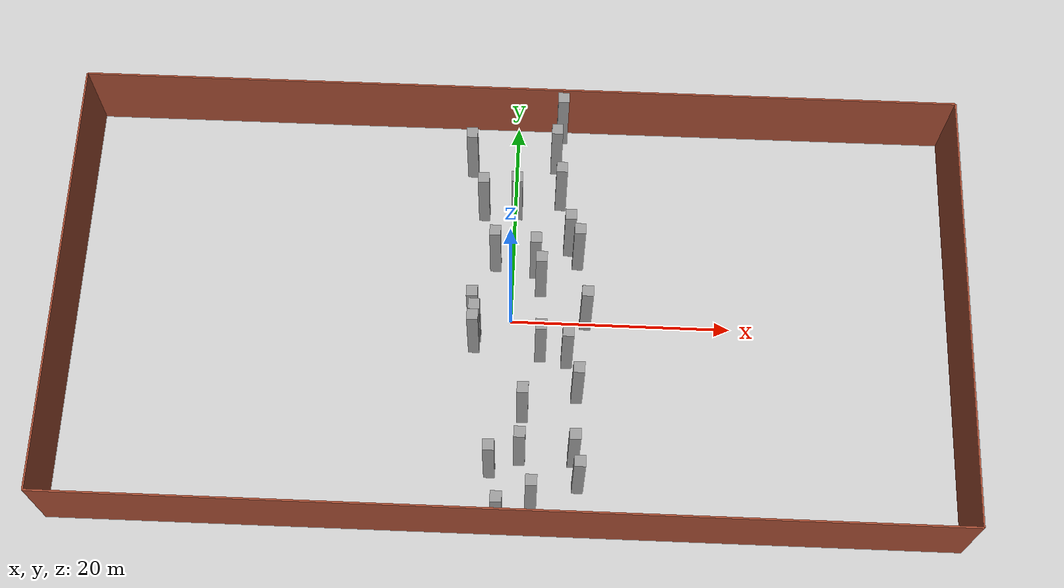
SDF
<sdf version="1.7">
 <world name="default">
  <model name="ground_plane">
   <static>1</static>
   <link name="link">
    <collision name="collision">
     <geometry><plane><normal>0 0 1</normal><size>100 100</size></plane></geometry>
     <surface>
      <contact><collide_bitmask>65535</collide_bitmask></contact>
      <friction><ode><mu>100</mu><mu2>50</mu2></ode></friction>
     </surface>
    </collision>
    <visual name="visual">
     <cast_shadows>0</cast_shadows>
     <geometry><plane><normal>0 0 1</normal><size>100 100</size></plane></geometry>
     <material>
      <script><uri>file://media/materials/scripts/gazebo.material</uri><name>Gazebo/Grey</name></script>
     </material>
    </visual>
   </link>
  </model>
  <model name="sim_room_rect">
   <link name="Wall_14">
    <collision name="Wall_14_Collision">
     <geometry><box><size>40 0.15 8</size></box></geometry>
     <pose>0 0 4 0 -0 0</pose>
    </collision>
    <visual name="Wall_14_Visual">
     <pose>0 0 4 0 -0 0</pose>
     <geometry><box><size>40 0.15 8</size></box></geometry>
     <material>
      <script><uri>file://media/materials/scripts/gazebo.material</uri><name>Gazebo/Bricks</name></script>
      <ambient>1 1 1 1</ambient>
     </material>
     <meta><layer>0</layer></meta>
    </visual>
    <pose>40 -0 0 0 -0 -1.5708</pose>
   </link>
   <link name="Wall_15">
    <collision name="Wall_15_Collision">
     <geometry><box><size>80 0.15 8</size></box></geometry>
     <pose>0 0 4 0 -0 0</pose>
    </collision>
    <visual name="Wall_15_Visual">
     <pose>0 0 4 0 -0 0</pose>
     <geometry><box><size>80 0.15 8</size></box></geometry>
     <material>
      <script><uri>file://media/materials/scripts/gazebo.material</uri><name>Gazebo/Bricks</name></script>
      <ambient>1 1 1 1</ambient>
     </material>
     <meta><layer>0</layer></meta>
    </visual>
    <pose>0 -20 0 0 -0 3.14159</pose>
   </link>
   <link name="Wall_16">
    <collision name="Wall_16_Collision">
     <geometry><box><size>40 0.15 8</size></box></geometry>
     <pose>0 0 4 0 -0 0</pose>
    </collision>
    <visual name="Wall_16_Visual">
     <pose>0 0 4 0 -0 0</pose>
     <geometry><box><size>40 0.15 8</size></box></geometry>
     <material>
      <script><uri>file://media/materials/scripts/gazebo.material</uri><name>Gazebo/Bricks</name></script>
      <ambient>1 1 1 1</ambient>
     </material>
     <meta><layer>0</layer></meta>
    </visual>
    <pose>-40 -0 0 0 -0 1.5708</pose>
   </link>
   <link name="Wall_19">
    <collision name="Wall_19_Collision">
     <geometry><box><size>80 0.15 8</size></box></geometry>
     <pose>0 0 4 0 -0 0</pose>
    </collision>
    <visual name="Wall_19_Visual">
     <pose>0 0 4 0 -0 0</pose>
     <geometry><box><size>80 0.15 8</size></box></geometry>
     <material>
      <script><uri>file://media/materials/scripts/gazebo.material</uri><name>Gazebo/Bricks</name></script>
      <ambient>1 1 1 1</ambient>
     </material>
     <meta><layer>0</layer></meta>
    </visual>
    <pose>0 20 0 0 -0 0</pose>
   </link>
   <static>1</static>
  </model>
  <model name="unit_box_static53">
   <link name="link">
    <inertial>
     <mass>1</mass>
     <inertia>
      <ixx>0.166667</ixx>
      <ixy>0</ixy>
      <ixz>0</ixz>
      <iyy>0.166667</iyy>
      <iyz>0</iyz>
      <izz>0.166667</izz>
     </inertia>
    </inertial>
    <visual name="visual">
     <geometry><box><size>1 1 8</size></box></geometry>
     <material>
      <script><name>Gazebo/Grey</name><uri>file://media/materials/scripts/gazebo.material</uri></script>
      <shader type="pixel"/>
     </material>
    </visual>
    <collision name="collision">
     <geometry><box><size>1 1 8</size></box></geometry>
     <surface>
      <friction>
       <ode><mu>1</mu><mu2>1</mu2><fdir1>0 0 0</fdir1><slip1>0</slip1><slip2>0</slip2></ode>
       <torsional>
        <coefficient>1</coefficient>
        <patch_radius>0</patch_radius>
        <surface_radius>0</surface_radius>
        <use_patch_radius>1</use_patch_radius>
        <ode><slip>0</slip></ode>
       </torsional>
      </friction>
      <bounce><restitution_coefficient>0</restitution_coefficient><threshold>1e+06</threshold></bounce>
      <contact>
       <collide_without_contact>0</collide_without_contact>
       <collide_without_contact_bitmask>1</collide_without_contact_bitmask>
       <collide_bitmask>1</collide_bitmask>
       <ode>
        <soft_cfm>0</soft_cfm>
        <soft_erp>0.2</soft_erp>
        <kp>1e+13</kp>
        <kd>1</kd>
        <max_vel>0.01</max_vel>
        <min_depth>0</min_depth>
       </ode>
       <bullet>
        <split_impulse>1</split_impulse>
        <split_impulse_penetration_threshold>-0.01</split_impulse_penetration_threshold>
        <soft_cfm>0</soft_cfm>
        <soft_erp>0.2</soft_erp>
        <kp>1e+13</kp>
        <kd>1</kd>
       </bullet>
      </contact>
     </surface>
    </collision>
   </link>
   <static>1</static>
   <pose>5.94114 5.9923 4 0 -0 0</pose>
  </model>
  <model name="unit_box_static78">
   <link name="link">
    <inertial>
     <mass>1</mass>
     <inertia>
      <ixx>0.166667</ixx>
      <ixy>0</ixy>
      <ixz>0</ixz>
      <iyy>0.166667</iyy>
      <iyz>0</iyz>
      <izz>0.166667</izz>
     </inertia>
    </inertial>
    <visual name="visual">
     <geometry><box><size>1 1 8</size></box></geometry>
     <material>
      <script><name>Gazebo/Grey</name><uri>file://media/materials/scripts/gazebo.material</uri></script>
      <shader type="pixel"/>
     </material>
    </visual>
    <collision name="collision">
     <geometry><box><size>1 1 8</size></box></geometry>
     <surface>
      <friction>
       <ode><mu>1</mu><mu2>1</mu2><fdir1>0 0 0</fdir1><slip1>0</slip1><slip2>0</slip2></ode>
       <torsional>
        <coefficient>1</coefficient>
        <patch_radius>0</patch_radius>
        <surface_radius>0</surface_radius>
        <use_patch_radius>1</use_patch_radius>
        <ode><slip>0</slip></ode>
       </torsional>
      </friction>
      <bounce><restitution_coefficient>0</restitution_coefficient><threshold>1e+06</threshold></bounce>
      <contact>
       <collide_without_contact>0</collide_without_contact>
       <collide_without_contact_bitmask>1</collide_without_contact_bitmask>
       <collide_bitmask>1</collide_bitmask>
       <ode>
        <soft_cfm>0</soft_cfm>
        <soft_erp>0.2</soft_erp>
        <kp>1e+13</kp>
        <kd>1</kd>
        <max_vel>0.01</max_vel>
        <min_depth>0</min_depth>
       </ode>
       <bullet>
        <split_impulse>1</split_impulse>
        <split_impulse_penetration_threshold>-0.01</split_impulse_penetration_threshold>
        <soft_cfm>0</soft_cfm>
        <soft_erp>0.2</soft_erp>
        <kp>1e+13</kp>
        <kd>1</kd>
       </bullet>
      </contact>
     </surface>
    </collision>
   </link>
   <static>1</static>
   <pose>4.15709 12.0635 4 0 -0 0</pose>
  </model>
  <model name="unit_box_static81">
   <link name="link">
    <inertial>
     <mass>1</mass>
     <inertia>
      <ixx>0.166667</ixx>
      <ixy>0</ixy>
      <ixz>0</ixz>
      <iyy>0.166667</iyy>
      <iyz>0</iyz>
      <izz>0.166667</izz>
     </inertia>
    </inertial>
    <visual name="visual">
     <geometry><box><size>1 1 8</size></box></geometry>
     <material>
      <script><name>Gazebo/Grey</name><uri>file://media/materials/scripts/gazebo.material</uri></script>
      <shader type="pixel"/>
     </material>
    </visual>
    <collision name="collision">
     <geometry><box><size>1 1 8</size></box></geometry>
     <surface>
      <friction>
       <ode><mu>1</mu><mu2>1</mu2><fdir1>0 0 0</fdir1><slip1>0</slip1><slip2>0</slip2></ode>
       <torsional>
        <coefficient>1</coefficient>
        <patch_radius>0</patch_radius>
        <surface_radius>0</surface_radius>
        <use_patch_radius>1</use_patch_radius>
        <ode><slip>0</slip></ode>
       </torsional>
      </friction>
      <bounce><restitution_coefficient>0</restitution_coefficient><threshold>1e+06</threshold></bounce>
      <contact>
       <collide_without_contact>0</collide_without_contact>
       <collide_without_contact_bitmask>1</collide_without_contact_bitmask>
       <collide_bitmask>1</collide_bitmask>
       <ode>
        <soft_cfm>0</soft_cfm>
        <soft_erp>0.2</soft_erp>
        <kp>1e+13</kp>
        <kd>1</kd>
        <max_vel>0.01</max_vel>
        <min_depth>0</min_depth>
       </ode>
       <bullet>
        <split_impulse>1</split_impulse>
        <split_impulse_penetration_threshold>-0.01</split_impulse_penetration_threshold>
        <soft_cfm>0</soft_cfm>
        <soft_erp>0.2</soft_erp>
        <kp>1e+13</kp>
        <kd>1</kd>
       </bullet>
      </contact>
     </surface>
    </collision>
   </link>
   <static>1</static>
   <pose>6.76678 -0.001473 4 0 -0 0</pose>
  </model>
  <model name="unit_box_static97">
   <link name="link">
    <inertial>
     <mass>1</mass>
     <inertia>
      <ixx>0.166667</ixx>
      <ixy>0</ixy>
      <ixz>0</ixz>
      <iyy>0.166667</iyy>
      <iyz>0</iyz>
      <izz>0.166667</izz>
     </inertia>
    </inertial>
    <visual name="visual">
     <geometry><box><size>1 1 8</size></box></geometry>
     <material>
      <script><name>Gazebo/Grey</name><uri>file://media/materials/scripts/gazebo.material</uri></script>
      <shader type="pixel"/>
     </material>
    </visual>
    <collision name="collision">
     <geometry><box><size>1 1 8</size></box></geometry>
     <surface>
      <friction>
       <ode><mu>1</mu><mu2>1</mu2><fdir1>0 0 0</fdir1><slip1>0</slip1><slip2>0</slip2></ode>
       <torsional>
        <coefficient>1</coefficient>
        <patch_radius>0</patch_radius>
        <surface_radius>0</surface_radius>
        <use_patch_radius>1</use_patch_radius>
        <ode><slip>0</slip></ode>
       </torsional>
      </friction>
      <bounce><restitution_coefficient>0</restitution_coefficient><threshold>1e+06</threshold></bounce>
      <contact>
       <collide_without_contact>0</collide_without_contact>
       <collide_without_contact_bitmask>1</collide_without_contact_bitmask>
       <collide_bitmask>1</collide_bitmask>
       <ode>
        <soft_cfm>0</soft_cfm>
        <soft_erp>0.2</soft_erp>
        <kp>1e+13</kp>
        <kd>1</kd>
        <max_vel>0.01</max_vel>
        <min_depth>0</min_depth>
       </ode>
       <bullet>
        <split_impulse>1</split_impulse>
        <split_impulse_penetration_threshold>-0.01</split_impulse_penetration_threshold>
        <soft_cfm>0</soft_cfm>
        <soft_erp>0.2</soft_erp>
        <kp>1e+13</kp>
        <kd>1</kd>
       </bullet>
      </contact>
     </surface>
    </collision>
   </link>
   <static>1</static>
   <pose>5.08949 7.37291 4 0 -0 0</pose>
  </model>
  <model name="unit_box_static99">
   <link name="link">
    <inertial>
     <mass>1</mass>
     <inertia>
      <ixx>0.166667</ixx>
      <ixy>0</ixy>
      <ixz>0</ixz>
      <iyy>0.166667</iyy>
      <iyz>0</iyz>
      <izz>0.166667</izz>
     </inertia>
    </inertial>
    <visual name="visual">
     <geometry><box><size>1 1 8</size></box></geometry>
     <material>
      <script><name>Gazebo/Grey</name><uri>file://media/materials/scripts/gazebo.material</uri></script>
      <shader type="pixel"/>
     </material>
    </visual>
    <collision name="collision">
     <geometry><box><size>1 1 8</size></box></geometry>
     <surface>
      <friction>
       <ode><mu>1</mu><mu2>1</mu2><fdir1>0 0 0</fdir1><slip1>0</slip1><slip2>0</slip2></ode>
       <torsional>
        <coefficient>1</coefficient>
        <patch_radius>0</patch_radius>
        <surface_radius>0</surface_radius>
        <use_patch_radius>1</use_patch_radius>
        <ode><slip>0</slip></ode>
       </torsional>
      </friction>
      <bounce><restitution_coefficient>0</restitution_coefficient><threshold>1e+06</threshold></bounce>
      <contact>
       <collide_without_contact>0</collide_without_contact>
       <collide_without_contact_bitmask>1</collide_without_contact_bitmask>
       <collide_bitmask>1</collide_bitmask>
       <ode>
        <soft_cfm>0</soft_cfm>
        <soft_erp>0.2</soft_erp>
        <kp>1e+13</kp>
        <kd>1</kd>
        <max_vel>0.01</max_vel>
        <min_depth>0</min_depth>
       </ode>
       <bullet>
        <split_impulse>1</split_impulse>
        <split_impulse_penetration_threshold>-0.01</split_impulse_penetration_threshold>
        <soft_cfm>0</soft_cfm>
        <soft_erp>0.2</soft_erp>
        <kp>1e+13</kp>
        <kd>1</kd>
       </bullet>
      </contact>
     </surface>
    </collision>
   </link>
   <static>1</static>
   <pose>-0.508644 -18.9445 4 0 -0 0</pose>
  </model>
  <model name="unit_box_static101">
   <link name="link">
    <inertial>
     <mass>1</mass>
     <inertia>
      <ixx>0.166667</ixx>
      <ixy>0</ixy>
      <ixz>0</ixz>
      <iyy>0.166667</iyy>
      <iyz>0</iyz>
      <izz>0.166667</izz>
     </inertia>
    </inertial>
    <visual name="visual">
     <geometry><box><size>1 1 8</size></box></geometry>
     <material>
      <script><name>Gazebo/Grey</name><uri>file://media/materials/scripts/gazebo.material</uri></script>
      <shader type="pixel"/>
     </material>
    </visual>
    <collision name="collision">
     <geometry><box><size>1 1 8</size></box></geometry>
     <surface>
      <friction>
       <ode><mu>1</mu><mu2>1</mu2><fdir1>0 0 0</fdir1><slip1>0</slip1><slip2>0</slip2></ode>
       <torsional>
        <coefficient>1</coefficient>
        <patch_radius>0</patch_radius>
        <surface_radius>0</surface_radius>
        <use_patch_radius>1</use_patch_radius>
        <ode><slip>0</slip></ode>
       </torsional>
      </friction>
      <bounce><restitution_coefficient>0</restitution_coefficient><threshold>1e+06</threshold></bounce>
      <contact>
       <collide_without_contact>0</collide_without_contact>
       <collide_without_contact_bitmask>1</collide_without_contact_bitmask>
       <collide_bitmask>1</collide_bitmask>
       <ode>
        <soft_cfm>0</soft_cfm>
        <soft_erp>0.2</soft_erp>
        <kp>1e+13</kp>
        <kd>1</kd>
        <max_vel>0.01</max_vel>
        <min_depth>0</min_depth>
       </ode>
       <bullet>
        <split_impulse>1</split_impulse>
        <split_impulse_penetration_threshold>-0.01</split_impulse_penetration_threshold>
        <soft_cfm>0</soft_cfm>
        <soft_erp>0.2</soft_erp>
        <kp>1e+13</kp>
        <kd>1</kd>
       </bullet>
      </contact>
     </surface>
    </collision>
   </link>
   <static>1</static>
   <pose>2.60868 3.15029 4 0 -0 0</pose>
  </model>
  <model name="unit_box_static104">
   <link name="link">
    <inertial>
     <mass>1</mass>
     <inertia>
      <ixx>0.166667</ixx>
      <ixy>0</ixy>
      <ixz>0</ixz>
      <iyy>0.166667</iyy>
      <iyz>0</iyz>
      <izz>0.166667</izz>
     </inertia>
    </inertial>
    <visual name="visual">
     <geometry><box><size>1 1 8</size></box></geometry>
     <material>
      <script><name>Gazebo/Grey</name><uri>file://media/materials/scripts/gazebo.material</uri></script>
      <shader type="pixel"/>
     </material>
    </visual>
    <collision name="collision">
     <geometry><box><size>1 1 8</size></box></geometry>
     <surface>
      <friction>
       <ode><mu>1</mu><mu2>1</mu2><fdir1>0 0 0</fdir1><slip1>0</slip1><slip2>0</slip2></ode>
       <torsional>
        <coefficient>1</coefficient>
        <patch_radius>0</patch_radius>
        <surface_radius>0</surface_radius>
        <use_patch_radius>1</use_patch_radius>
        <ode><slip>0</slip></ode>
       </torsional>
      </friction>
      <bounce><restitution_coefficient>0</restitution_coefficient><threshold>1e+06</threshold></bounce>
      <contact>
       <collide_without_contact>0</collide_without_contact>
       <collide_without_contact_bitmask>1</collide_without_contact_bitmask>
       <collide_bitmask>1</collide_bitmask>
       <ode>
        <soft_cfm>0</soft_cfm>
        <soft_erp>0.2</soft_erp>
        <kp>1e+13</kp>
        <kd>1</kd>
        <max_vel>0.01</max_vel>
        <min_depth>0</min_depth>
       </ode>
       <bullet>
        <split_impulse>1</split_impulse>
        <split_impulse_penetration_threshold>-0.01</split_impulse_penetration_threshold>
        <soft_cfm>0</soft_cfm>
        <soft_erp>0.2</soft_erp>
        <kp>1e+13</kp>
        <kd>1</kd>
       </bullet>
      </contact>
     </surface>
    </collision>
   </link>
   <static>1</static>
   <pose>5.16515 -3.85592 4 0 -0 0</pose>
  </model>
  <model name="unit_box_static107">
   <link name="link">
    <inertial>
     <mass>1</mass>
     <inertia>
      <ixx>0.166667</ixx>
      <ixy>0</ixy>
      <ixz>0</ixz>
      <iyy>0.166667</iyy>
      <iyz>0</iyz>
      <izz>0.166667</izz>
     </inertia>
    </inertial>
    <visual name="visual">
     <geometry><box><size>1 1 8</size></box></geometry>
     <material>
      <script><name>Gazebo/Grey</name><uri>file://media/materials/scripts/gazebo.material</uri></script>
      <shader type="pixel"/>
     </material>
    </visual>
    <collision name="collision">
     <geometry><box><size>1 1 8</size></box></geometry>
     <surface>
      <friction>
       <ode><mu>1</mu><mu2>1</mu2><fdir1>0 0 0</fdir1><slip1>0</slip1><slip2>0</slip2></ode>
       <torsional>
        <coefficient>1</coefficient>
        <patch_radius>0</patch_radius>
        <surface_radius>0</surface_radius>
        <use_patch_radius>1</use_patch_radius>
        <ode><slip>0</slip></ode>
       </torsional>
      </friction>
      <bounce><restitution_coefficient>0</restitution_coefficient><threshold>1e+06</threshold></bounce>
      <contact>
       <collide_without_contact>0</collide_without_contact>
       <collide_without_contact_bitmask>1</collide_without_contact_bitmask>
       <collide_bitmask>1</collide_bitmask>
       <ode>
        <soft_cfm>0</soft_cfm>
        <soft_erp>0.2</soft_erp>
        <kp>1e+13</kp>
        <kd>1</kd>
        <max_vel>0.01</max_vel>
        <min_depth>0</min_depth>
       </ode>
       <bullet>
        <split_impulse>1</split_impulse>
        <split_impulse_penetration_threshold>-0.01</split_impulse_penetration_threshold>
        <soft_cfm>0</soft_cfm>
        <soft_erp>0.2</soft_erp>
        <kp>1e+13</kp>
        <kd>1</kd>
       </bullet>
      </contact>
     </surface>
    </collision>
   </link>
   <static>1</static>
   <pose>6.45567 -15.5784 4 0 -0 0</pose>
  </model>
  <model name="unit_box_static119">
   <link name="link">
    <inertial>
     <mass>1</mass>
     <inertia>
      <ixx>0.166667</ixx>
      <ixy>0</ixy>
      <ixz>0</ixz>
      <iyy>0.166667</iyy>
      <iyz>0</iyz>
      <izz>0.166667</izz>
     </inertia>
    </inertial>
    <visual name="visual">
     <geometry><box><size>1 1 8</size></box></geometry>
     <material>
      <script><name>Gazebo/Grey</name><uri>file://media/materials/scripts/gazebo.material</uri></script>
      <shader type="pixel"/>
     </material>
    </visual>
    <collision name="collision">
     <geometry><box><size>1 1 8</size></box></geometry>
     <surface>
      <friction>
       <ode><mu>1</mu><mu2>1</mu2><fdir1>0 0 0</fdir1><slip1>0</slip1><slip2>0</slip2></ode>
       <torsional>
        <coefficient>1</coefficient>
        <patch_radius>0</patch_radius>
        <surface_radius>0</surface_radius>
        <use_patch_radius>1</use_patch_radius>
        <ode><slip>0</slip></ode>
       </torsional>
      </friction>
      <bounce><restitution_coefficient>0</restitution_coefficient><threshold>1e+06</threshold></bounce>
      <contact>
       <collide_without_contact>0</collide_without_contact>
       <collide_without_contact_bitmask>1</collide_without_contact_bitmask>
       <collide_bitmask>1</collide_bitmask>
       <ode>
        <soft_cfm>0</soft_cfm>
        <soft_erp>0.2</soft_erp>
        <kp>1e+13</kp>
        <kd>1</kd>
        <max_vel>0.01</max_vel>
        <min_depth>0</min_depth>
       </ode>
       <bullet>
        <split_impulse>1</split_impulse>
        <split_impulse_penetration_threshold>-0.01</split_impulse_penetration_threshold>
        <soft_cfm>0</soft_cfm>
        <soft_erp>0.2</soft_erp>
        <kp>1e+13</kp>
        <kd>1</kd>
       </bullet>
      </contact>
     </surface>
    </collision>
   </link>
   <static>1</static>
   <pose>-4.14021 15.2702 4 0 -0 0</pose>
  </model>
  <model name="unit_box_static124">
   <link name="link">
    <inertial>
     <mass>1</mass>
     <inertia>
      <ixx>0.166667</ixx>
      <ixy>0</ixy>
      <ixz>0</ixz>
      <iyy>0.166667</iyy>
      <iyz>0</iyz>
      <izz>0.166667</izz>
     </inertia>
    </inertial>
    <visual name="visual">
     <geometry><box><size>1 1 8</size></box></geometry>
     <material>
      <script><name>Gazebo/Grey</name><uri>file://media/materials/scripts/gazebo.material</uri></script>
      <shader type="pixel"/>
     </material>
    </visual>
    <collision name="collision">
     <geometry><box><size>1 1 8</size></box></geometry>
     <surface>
      <friction>
       <ode><mu>1</mu><mu2>1</mu2><fdir1>0 0 0</fdir1><slip1>0</slip1><slip2>0</slip2></ode>
       <torsional>
        <coefficient>1</coefficient>
        <patch_radius>0</patch_radius>
        <surface_radius>0</surface_radius>
        <use_patch_radius>1</use_patch_radius>
        <ode><slip>0</slip></ode>
       </torsional>
      </friction>
      <bounce><restitution_coefficient>0</restitution_coefficient><threshold>1e+06</threshold></bounce>
      <contact>
       <collide_without_contact>0</collide_without_contact>
       <collide_without_contact_bitmask>1</collide_without_contact_bitmask>
       <collide_bitmask>1</collide_bitmask>
       <ode>
        <soft_cfm>0</soft_cfm>
        <soft_erp>0.2</soft_erp>
        <kp>1e+13</kp>
        <kd>1</kd>
        <max_vel>0.01</max_vel>
        <min_depth>0</min_depth>
       </ode>
       <bullet>
        <split_impulse>1</split_impulse>
        <split_impulse_penetration_threshold>-0.01</split_impulse_penetration_threshold>
        <soft_cfm>0</soft_cfm>
        <soft_erp>0.2</soft_erp>
        <kp>1e+13</kp>
        <kd>1</kd>
       </bullet>
      </contact>
     </surface>
    </collision>
   </link>
   <static>1</static>
   <pose>-3.26794 -2.61889 4 0 -0 0</pose>
  </model>
  <model name="unit_box_static129">
   <link name="link">
    <inertial>
     <mass>1</mass>
     <inertia>
      <ixx>0.166667</ixx>
      <ixy>0</ixy>
      <ixz>0</ixz>
      <iyy>0.166667</iyy>
      <iyz>0</iyz>
      <izz>0.166667</izz>
     </inertia>
    </inertial>
    <visual name="visual">
     <geometry><box><size>1 1 8</size></box></geometry>
     <material>
      <script><name>Gazebo/Grey</name><uri>file://media/materials/scripts/gazebo.material</uri></script>
      <shader type="pixel"/>
     </material>
    </visual>
    <collision name="collision">
     <geometry><box><size>1 1 8</size></box></geometry>
     <surface>
      <friction>
       <ode><mu>1</mu><mu2>1</mu2><fdir1>0 0 0</fdir1><slip1>0</slip1><slip2>0</slip2></ode>
       <torsional>
        <coefficient>1</coefficient>
        <patch_radius>0</patch_radius>
        <surface_radius>0</surface_radius>
        <use_patch_radius>1</use_patch_radius>
        <ode><slip>0</slip></ode>
       </torsional>
      </friction>
      <bounce><restitution_coefficient>0</restitution_coefficient><threshold>1e+06</threshold></bounce>
      <contact>
       <collide_without_contact>0</collide_without_contact>
       <collide_without_contact_bitmask>1</collide_without_contact_bitmask>
       <collide_bitmask>1</collide_bitmask>
       <ode>
        <soft_cfm>0</soft_cfm>
        <soft_erp>0.2</soft_erp>
        <kp>1e+13</kp>
        <kd>1</kd>
        <max_vel>0.01</max_vel>
        <min_depth>0</min_depth>
       </ode>
       <bullet>
        <split_impulse>1</split_impulse>
        <split_impulse_penetration_threshold>-0.01</split_impulse_penetration_threshold>
        <soft_cfm>0</soft_cfm>
        <soft_erp>0.2</soft_erp>
        <kp>1e+13</kp>
        <kd>1</kd>
       </bullet>
      </contact>
     </surface>
    </collision>
   </link>
   <static>1</static>
   <pose>3.62313 15.9289 4 0 -0 0</pose>
  </model>
  <model name="unit_box_static133">
   <link name="link">
    <inertial>
     <mass>1</mass>
     <inertia>
      <ixx>0.166667</ixx>
      <ixy>0</ixy>
      <ixz>0</ixz>
      <iyy>0.166667</iyy>
      <iyz>0</iyz>
      <izz>0.166667</izz>
     </inertia>
    </inertial>
    <visual name="visual">
     <geometry><box><size>1 1 8</size></box></geometry>
     <material>
      <script><name>Gazebo/Grey</name><uri>file://media/materials/scripts/gazebo.material</uri></script>
      <shader type="pixel"/>
     </material>
    </visual>
    <collision name="collision">
     <geometry><box><size>1 1 8</size></box></geometry>
     <surface>
      <friction>
       <ode><mu>1</mu><mu2>1</mu2><fdir1>0 0 0</fdir1><slip1>0</slip1><slip2>0</slip2></ode>
       <torsional>
        <coefficient>1</coefficient>
        <patch_radius>0</patch_radius>
        <surface_radius>0</surface_radius>
        <use_patch_radius>1</use_patch_radius>
        <ode><slip>0</slip></ode>
       </torsional>
      </friction>
      <bounce><restitution_coefficient>0</restitution_coefficient><threshold>1e+06</threshold></bounce>
      <contact>
       <collide_without_contact>0</collide_without_contact>
       <collide_without_contact_bitmask>1</collide_without_contact_bitmask>
       <collide_bitmask>1</collide_bitmask>
       <ode>
        <soft_cfm>0</soft_cfm>
        <soft_erp>0.2</soft_erp>
        <kp>1e+13</kp>
        <kd>1</kd>
        <max_vel>0.01</max_vel>
        <min_depth>0</min_depth>
       </ode>
       <bullet>
        <split_impulse>1</split_impulse>
        <split_impulse_penetration_threshold>-0.01</split_impulse_penetration_threshold>
        <soft_cfm>0</soft_cfm>
        <soft_erp>0.2</soft_erp>
        <kp>1e+13</kp>
        <kd>1</kd>
       </bullet>
      </contact>
     </surface>
    </collision>
   </link>
   <static>1</static>
   <pose>1.25902 -13.1947 4 0 -0 0</pose>
  </model>
  <model name="unit_box_static135">
   <link name="link">
    <inertial>
     <mass>1</mass>
     <inertia>
      <ixx>0.166667</ixx>
      <ixy>0</ixy>
      <ixz>0</ixz>
      <iyy>0.166667</iyy>
      <iyz>0</iyz>
      <izz>0.166667</izz>
     </inertia>
    </inertial>
    <visual name="visual">
     <geometry><box><size>1 1 8</size></box></geometry>
     <material>
      <script><name>Gazebo/Grey</name><uri>file://media/materials/scripts/gazebo.material</uri></script>
      <shader type="pixel"/>
     </material>
    </visual>
    <collision name="collision">
     <geometry><box><size>1 1 8</size></box></geometry>
     <surface>
      <friction>
       <ode><mu>1</mu><mu2>1</mu2><fdir1>0 0 0</fdir1><slip1>0</slip1><slip2>0</slip2></ode>
       <torsional>
        <coefficient>1</coefficient>
        <patch_radius>0</patch_radius>
        <surface_radius>0</surface_radius>
        <use_patch_radius>1</use_patch_radius>
        <ode><slip>0</slip></ode>
       </torsional>
      </friction>
      <bounce><restitution_coefficient>0</restitution_coefficient><threshold>1e+06</threshold></bounce>
      <contact>
       <collide_without_contact>0</collide_without_contact>
       <collide_without_contact_bitmask>1</collide_without_contact_bitmask>
       <collide_bitmask>1</collide_bitmask>
       <ode>
        <soft_cfm>0</soft_cfm>
        <soft_erp>0.2</soft_erp>
        <kp>1e+13</kp>
        <kd>1</kd>
        <max_vel>0.01</max_vel>
        <min_depth>0</min_depth>
       </ode>
       <bullet>
        <split_impulse>1</split_impulse>
        <split_impulse_penetration_threshold>-0.01</split_impulse_penetration_threshold>
        <soft_cfm>0</soft_cfm>
        <soft_erp>0.2</soft_erp>
        <kp>1e+13</kp>
        <kd>1</kd>
       </bullet>
      </contact>
     </surface>
    </collision>
   </link>
   <static>1</static>
   <pose>4.10732 19.2168 4 0 -0 0</pose>
  </model>
  <model name="unit_box_static137">
   <link name="link">
    <inertial>
     <mass>1</mass>
     <inertia>
      <ixx>0.166667</ixx>
      <ixy>0</ixy>
      <ixz>0</ixz>
      <iyy>0.166667</iyy>
      <iyz>0</iyz>
      <izz>0.166667</izz>
     </inertia>
    </inertial>
    <visual name="visual">
     <geometry><box><size>1 1 8</size></box></geometry>
     <material>
      <script><name>Gazebo/Grey</name><uri>file://media/materials/scripts/gazebo.material</uri></script>
      <shader type="pixel"/>
     </material>
    </visual>
    <collision name="collision">
     <geometry><box><size>1 1 8</size></box></geometry>
     <surface>
      <friction>
       <ode><mu>1</mu><mu2>1</mu2><fdir1>0 0 0</fdir1><slip1>0</slip1><slip2>0</slip2></ode>
       <torsional>
        <coefficient>1</coefficient>
        <patch_radius>0</patch_radius>
        <surface_radius>0</surface_radius>
        <use_patch_radius>1</use_patch_radius>
        <ode><slip>0</slip></ode>
       </torsional>
      </friction>
      <bounce><restitution_coefficient>0</restitution_coefficient><threshold>1e+06</threshold></bounce>
      <contact>
       <collide_without_contact>0</collide_without_contact>
       <collide_without_contact_bitmask>1</collide_without_contact_bitmask>
       <collide_bitmask>1</collide_bitmask>
       <ode>
        <soft_cfm>0</soft_cfm>
        <soft_erp>0.2</soft_erp>
        <kp>1e+13</kp>
        <kd>1</kd>
        <max_vel>0.01</max_vel>
        <min_depth>0</min_depth>
       </ode>
       <bullet>
        <split_impulse>1</split_impulse>
        <split_impulse_penetration_threshold>-0.01</split_impulse_penetration_threshold>
        <soft_cfm>0</soft_cfm>
        <soft_erp>0.2</soft_erp>
        <kp>1e+13</kp>
        <kd>1</kd>
       </bullet>
      </contact>
     </surface>
    </collision>
   </link>
   <static>1</static>
   <pose>6.17406 -7.16334 4 0 -0 0</pose>
  </model>
  <model name="unit_box_static138">
   <link name="link">
    <inertial>
     <mass>1</mass>
     <inertia>
      <ixx>0.166667</ixx>
      <ixy>0</ixy>
      <ixz>0</ixz>
      <iyy>0.166667</iyy>
      <iyz>0</iyz>
      <izz>0.166667</izz>
     </inertia>
    </inertial>
    <visual name="visual">
     <geometry><box><size>1 1 8</size></box></geometry>
     <material>
      <script><name>Gazebo/Grey</name><uri>file://media/materials/scripts/gazebo.material</uri></script>
      <shader type="pixel"/>
     </material>
    </visual>
    <collision name="collision">
     <geometry><box><size>1 1 8</size></box></geometry>
     <surface>
      <friction>
       <ode><mu>1</mu><mu2>1</mu2><fdir1>0 0 0</fdir1><slip1>0</slip1><slip2>0</slip2></ode>
       <torsional>
        <coefficient>1</coefficient>
        <patch_radius>0</patch_radius>
        <surface_radius>0</surface_radius>
        <use_patch_radius>1</use_patch_radius>
        <ode><slip>0</slip></ode>
       </torsional>
      </friction>
      <bounce><restitution_coefficient>0</restitution_coefficient><threshold>1e+06</threshold></bounce>
      <contact>
       <collide_without_contact>0</collide_without_contact>
       <collide_without_contact_bitmask>1</collide_without_contact_bitmask>
       <collide_bitmask>1</collide_bitmask>
       <ode>
        <soft_cfm>0</soft_cfm>
        <soft_erp>0.2</soft_erp>
        <kp>1e+13</kp>
        <kd>1</kd>
        <max_vel>0.01</max_vel>
        <min_depth>0</min_depth>
       </ode>
       <bullet>
        <split_impulse>1</split_impulse>
        <split_impulse_penetration_threshold>-0.01</split_impulse_penetration_threshold>
        <soft_cfm>0</soft_cfm>
        <soft_erp>0.2</soft_erp>
        <kp>1e+13</kp>
        <kd>1</kd>
       </bullet>
      </contact>
     </surface>
    </collision>
   </link>
   <static>1</static>
   <pose>-3.18246 -1.60345 4 0 -0 0</pose>
  </model>
  <model name="unit_box_static142">
   <link name="link">
    <inertial>
     <mass>1</mass>
     <inertia>
      <ixx>0.166667</ixx>
      <ixy>0</ixy>
      <ixz>0</ixz>
      <iyy>0.166667</iyy>
      <iyz>0</iyz>
      <izz>0.166667</izz>
     </inertia>
    </inertial>
    <visual name="visual">
     <geometry><box><size>1 1 8</size></box></geometry>
     <material>
      <script><name>Gazebo/Grey</name><uri>file://media/materials/scripts/gazebo.material</uri></script>
      <shader type="pixel"/>
     </material>
    </visual>
    <collision name="collision">
     <geometry><box><size>1 1 8</size></box></geometry>
     <surface>
      <friction>
       <ode><mu>1</mu><mu2>1</mu2><fdir1>0 0 0</fdir1><slip1>0</slip1><slip2>0</slip2></ode>
       <torsional>
        <coefficient>1</coefficient>
        <patch_radius>0</patch_radius>
        <surface_radius>0</surface_radius>
        <use_patch_radius>1</use_patch_radius>
        <ode><slip>0</slip></ode>
       </torsional>
      </friction>
      <bounce><restitution_coefficient>0</restitution_coefficient><threshold>1e+06</threshold></bounce>
      <contact>
       <collide_without_contact>0</collide_without_contact>
       <collide_without_contact_bitmask>1</collide_without_contact_bitmask>
       <collide_bitmask>1</collide_bitmask>
       <ode>
        <soft_cfm>0</soft_cfm>
        <soft_erp>0.2</soft_erp>
        <kp>1e+13</kp>
        <kd>1</kd>
        <max_vel>0.01</max_vel>
        <min_depth>0</min_depth>
       </ode>
       <bullet>
        <split_impulse>1</split_impulse>
        <split_impulse_penetration_threshold>-0.01</split_impulse_penetration_threshold>
        <soft_cfm>0</soft_cfm>
        <soft_erp>0.2</soft_erp>
        <kp>1e+13</kp>
        <kd>1</kd>
       </bullet>
      </contact>
     </surface>
    </collision>
   </link>
   <static>1</static>
   <pose>2.05019 5.00396 4 0 -0 0</pose>
  </model>
  <model name="unit_box_static143">
   <link name="link">
    <inertial>
     <mass>1</mass>
     <inertia>
      <ixx>0.166667</ixx>
      <ixy>0</ixy>
      <ixz>0</ixz>
      <iyy>0.166667</iyy>
      <iyz>0</iyz>
      <izz>0.166667</izz>
     </inertia>
    </inertial>
    <visual name="visual">
     <geometry><box><size>1 1 8</size></box></geometry>
     <material>
      <script><name>Gazebo/Grey</name><uri>file://media/materials/scripts/gazebo.material</uri></script>
      <shader type="pixel"/>
     </material>
    </visual>
    <collision name="collision">
     <geometry><box><size>1 1 8</size></box></geometry>
     <surface>
      <friction>
       <ode><mu>1</mu><mu2>1</mu2><fdir1>0 0 0</fdir1><slip1>0</slip1><slip2>0</slip2></ode>
       <torsional>
        <coefficient>1</coefficient>
        <patch_radius>0</patch_radius>
        <surface_radius>0</surface_radius>
        <use_patch_radius>1</use_patch_radius>
        <ode><slip>0</slip></ode>
       </torsional>
      </friction>
      <bounce><restitution_coefficient>0</restitution_coefficient><threshold>1e+06</threshold></bounce>
      <contact>
       <collide_without_contact>0</collide_without_contact>
       <collide_without_contact_bitmask>1</collide_without_contact_bitmask>
       <collide_bitmask>1</collide_bitmask>
       <ode>
        <soft_cfm>0</soft_cfm>
        <soft_erp>0.2</soft_erp>
        <kp>1e+13</kp>
        <kd>1</kd>
        <max_vel>0.01</max_vel>
        <min_depth>0</min_depth>
       </ode>
       <bullet>
        <split_impulse>1</split_impulse>
        <split_impulse_penetration_threshold>-0.01</split_impulse_penetration_threshold>
        <soft_cfm>0</soft_cfm>
        <soft_erp>0.2</soft_erp>
        <kp>1e+13</kp>
        <kd>1</kd>
       </bullet>
      </contact>
     </surface>
    </collision>
   </link>
   <static>1</static>
   <pose>2.76936 -3.29682 4 0 -0 0</pose>
  </model>
  <model name="unit_box_static145">
   <link name="link">
    <inertial>
     <mass>1</mass>
     <inertia>
      <ixx>0.166667</ixx>
      <ixy>0</ixy>
      <ixz>0</ixz>
      <iyy>0.166667</iyy>
      <iyz>0</iyz>
      <izz>0.166667</izz>
     </inertia>
    </inertial>
    <visual name="visual">
     <geometry><box><size>1 1 8</size></box></geometry>
     <material>
      <script><name>Gazebo/Grey</name><uri>file://media/materials/scripts/gazebo.material</uri></script>
      <shader type="pixel"/>
     </material>
    </visual>
    <collision name="collision">
     <geometry><box><size>1 1 8</size></box></geometry>
     <surface>
      <friction>
       <ode><mu>1</mu><mu2>1</mu2><fdir1>0 0 0</fdir1><slip1>0</slip1><slip2>0</slip2></ode>
       <torsional>
        <coefficient>1</coefficient>
        <patch_radius>0</patch_radius>
        <surface_radius>0</surface_radius>
        <use_patch_radius>1</use_patch_radius>
        <ode><slip>0</slip></ode>
       </torsional>
      </friction>
      <bounce><restitution_coefficient>0</restitution_coefficient><threshold>1e+06</threshold></bounce>
      <contact>
       <collide_without_contact>0</collide_without_contact>
       <collide_without_contact_bitmask>1</collide_without_contact_bitmask>
       <collide_bitmask>1</collide_bitmask>
       <ode>
        <soft_cfm>0</soft_cfm>
        <soft_erp>0.2</soft_erp>
        <kp>1e+13</kp>
        <kd>1</kd>
        <max_vel>0.01</max_vel>
        <min_depth>0</min_depth>
       </ode>
       <bullet>
        <split_impulse>1</split_impulse>
        <split_impulse_penetration_threshold>-0.01</split_impulse_penetration_threshold>
        <soft_cfm>0</soft_cfm>
        <soft_erp>0.2</soft_erp>
        <kp>1e+13</kp>
        <kd>1</kd>
       </bullet>
      </contact>
     </surface>
    </collision>
   </link>
   <static>1</static>
   <pose>-1.62188 5.54173 4 0 -0 0</pose>
  </model>
  <model name="unit_box_static157">
   <link name="link">
    <inertial>
     <mass>1</mass>
     <inertia>
      <ixx>0.166667</ixx>
      <ixy>0</ixy>
      <ixz>0</ixz>
      <iyy>0.166667</iyy>
      <iyz>0</iyz>
      <izz>0.166667</izz>
     </inertia>
    </inertial>
    <visual name="visual">
     <geometry><box><size>1 1 8</size></box></geometry>
     <material>
      <script><name>Gazebo/Grey</name><uri>file://media/materials/scripts/gazebo.material</uri></script>
      <shader type="pixel"/>
     </material>
    </visual>
    <collision name="collision">
     <geometry><box><size>1 1 8</size></box></geometry>
     <surface>
      <friction>
       <ode><mu>1</mu><mu2>1</mu2><fdir1>0 0 0</fdir1><slip1>0</slip1><slip2>0</slip2></ode>
       <torsional>
        <coefficient>1</coefficient>
        <patch_radius>0</patch_radius>
        <surface_radius>0</surface_radius>
        <use_patch_radius>1</use_patch_radius>
        <ode><slip>0</slip></ode>
       </torsional>
      </friction>
      <bounce><restitution_coefficient>0</restitution_coefficient><threshold>1e+06</threshold></bounce>
      <contact>
       <collide_without_contact>0</collide_without_contact>
       <collide_without_contact_bitmask>1</collide_without_contact_bitmask>
       <collide_bitmask>1</collide_bitmask>
       <ode>
        <soft_cfm>0</soft_cfm>
        <soft_erp>0.2</soft_erp>
        <kp>1e+13</kp>
        <kd>1</kd>
        <max_vel>0.01</max_vel>
        <min_depth>0</min_depth>
       </ode>
       <bullet>
        <split_impulse>1</split_impulse>
        <split_impulse_penetration_threshold>-0.01</split_impulse_penetration_threshold>
        <soft_cfm>0</soft_cfm>
        <soft_erp>0.2</soft_erp>
        <kp>1e+13</kp>
        <kd>1</kd>
       </bullet>
      </contact>
     </surface>
    </collision>
   </link>
   <static>1</static>
   <pose>6.00186 -13.1955 4 0 -0 0</pose>
  </model>
  <model name="unit_box_static161">
   <link name="link">
    <inertial>
     <mass>1</mass>
     <inertia>
      <ixx>0.166667</ixx>
      <ixy>0</ixy>
      <ixz>0</ixz>
      <iyy>0.166667</iyy>
      <iyz>0</iyz>
      <izz>0.166667</izz>
     </inertia>
    </inertial>
    <visual name="visual">
     <geometry><box><size>1 1 8</size></box></geometry>
     <material>
      <script><name>Gazebo/Grey</name><uri>file://media/materials/scripts/gazebo.material</uri></script>
      <shader type="pixel"/>
     </material>
    </visual>
    <collision name="collision">
     <geometry><box><size>1 1 8</size></box></geometry>
     <surface>
      <friction>
       <ode><mu>1</mu><mu2>1</mu2><fdir1>0 0 0</fdir1><slip1>0</slip1><slip2>0</slip2></ode>
       <torsional>
        <coefficient>1</coefficient>
        <patch_radius>0</patch_radius>
        <surface_radius>0</surface_radius>
        <use_patch_radius>1</use_patch_radius>
        <ode><slip>0</slip></ode>
       </torsional>
      </friction>
      <bounce><restitution_coefficient>0</restitution_coefficient><threshold>1e+06</threshold></bounce>
      <contact>
       <collide_without_contact>0</collide_without_contact>
       <collide_without_contact_bitmask>1</collide_without_contact_bitmask>
       <collide_bitmask>1</collide_bitmask>
       <ode>
        <soft_cfm>0</soft_cfm>
        <soft_erp>0.2</soft_erp>
        <kp>1e+13</kp>
        <kd>1</kd>
        <max_vel>0.01</max_vel>
        <min_depth>0</min_depth>
       </ode>
       <bullet>
        <split_impulse>1</split_impulse>
        <split_impulse_penetration_threshold>-0.01</split_impulse_penetration_threshold>
        <soft_cfm>0</soft_cfm>
        <soft_erp>0.2</soft_erp>
        <kp>1e+13</kp>
        <kd>1</kd>
       </bullet>
      </contact>
     </surface>
    </collision>
   </link>
   <static>1</static>
   <pose>-1.343 -14.4437 4 0 -0 0</pose>
  </model>
  <model name="unit_box_static163">
   <link name="link">
    <inertial>
     <mass>1</mass>
     <inertia>
      <ixx>0.166667</ixx>
      <ixy>0</ixy>
      <ixz>0</ixz>
      <iyy>0.166667</iyy>
      <iyz>0</iyz>
      <izz>0.166667</izz>
     </inertia>
    </inertial>
    <visual name="visual">
     <geometry><box><size>1 1 8</size></box></geometry>
     <material>
      <script><name>Gazebo/Grey</name><uri>file://media/materials/scripts/gazebo.material</uri></script>
      <shader type="pixel"/>
     </material>
    </visual>
    <collision name="collision">
     <geometry><box><size>1 1 8</size></box></geometry>
     <surface>
      <friction>
       <ode><mu>1</mu><mu2>1</mu2><fdir1>0 0 0</fdir1><slip1>0</slip1><slip2>0</slip2></ode>
       <torsional>
        <coefficient>1</coefficient>
        <patch_radius>0</patch_radius>
        <surface_radius>0</surface_radius>
        <use_patch_radius>1</use_patch_radius>
        <ode><slip>0</slip></ode>
       </torsional>
      </friction>
      <bounce><restitution_coefficient>0</restitution_coefficient><threshold>1e+06</threshold></bounce>
      <contact>
       <collide_without_contact>0</collide_without_contact>
       <collide_without_contact_bitmask>1</collide_without_contact_bitmask>
       <collide_bitmask>1</collide_bitmask>
       <ode>
        <soft_cfm>0</soft_cfm>
        <soft_erp>0.2</soft_erp>
        <kp>1e+13</kp>
        <kd>1</kd>
        <max_vel>0.01</max_vel>
        <min_depth>0</min_depth>
       </ode>
       <bullet>
        <split_impulse>1</split_impulse>
        <split_impulse_penetration_threshold>-0.01</split_impulse_penetration_threshold>
        <soft_cfm>0</soft_cfm>
        <soft_erp>0.2</soft_erp>
        <kp>1e+13</kp>
        <kd>1</kd>
       </bullet>
      </contact>
     </surface>
    </collision>
   </link>
   <static>1</static>
   <pose>-2.89187 10.7254 4 0 -0 0</pose>
  </model>
  <model name="unit_box_static166">
   <link name="link">
    <inertial>
     <mass>1</mass>
     <inertia>
      <ixx>0.166667</ixx>
      <ixy>0</ixy>
      <ixz>0</ixz>
      <iyy>0.166667</iyy>
      <iyz>0</iyz>
      <izz>0.166667</izz>
     </inertia>
    </inertial>
    <visual name="visual">
     <geometry><box><size>1 1 8</size></box></geometry>
     <material>
      <script><name>Gazebo/Grey</name><uri>file://media/materials/scripts/gazebo.material</uri></script>
      <shader type="pixel"/>
     </material>
    </visual>
    <collision name="collision">
     <geometry><box><size>1 1 8</size></box></geometry>
     <surface>
      <friction>
       <ode><mu>1</mu><mu2>1</mu2><fdir1>0 0 0</fdir1><slip1>0</slip1><slip2>0</slip2></ode>
       <torsional>
        <coefficient>1</coefficient>
        <patch_radius>0</patch_radius>
        <surface_radius>0</surface_radius>
        <use_patch_radius>1</use_patch_radius>
        <ode><slip>0</slip></ode>
       </torsional>
      </friction>
      <bounce><restitution_coefficient>0</restitution_coefficient><threshold>1e+06</threshold></bounce>
      <contact>
       <collide_without_contact>0</collide_without_contact>
       <collide_without_contact_bitmask>1</collide_without_contact_bitmask>
       <collide_bitmask>1</collide_bitmask>
       <ode>
        <soft_cfm>0</soft_cfm>
        <soft_erp>0.2</soft_erp>
        <kp>1e+13</kp>
        <kd>1</kd>
        <max_vel>0.01</max_vel>
        <min_depth>0</min_depth>
       </ode>
       <bullet>
        <split_impulse>1</split_impulse>
        <split_impulse_penetration_threshold>-0.01</split_impulse_penetration_threshold>
        <soft_cfm>0</soft_cfm>
        <soft_erp>0.2</soft_erp>
        <kp>1e+13</kp>
        <kd>1</kd>
       </bullet>
      </contact>
     </surface>
    </collision>
   </link>
   <static>1</static>
   <pose>2.39171 -17.3966 4 0 -0 0</pose>
  </model>
  <model name="unit_box_static179">
   <link name="link">
    <inertial>
     <mass>1</mass>
     <inertia>
      <ixx>0.166667</ixx>
      <ixy>0</ixy>
      <ixz>0</ixz>
      <iyy>0.166667</iyy>
      <iyz>0</iyz>
      <izz>0.166667</izz>
     </inertia>
    </inertial>
    <visual name="visual">
     <geometry><box><size>1 1 8</size></box></geometry>
     <material>
      <script><name>Gazebo/Grey</name><uri>file://media/materials/scripts/gazebo.material</uri></script>
      <shader type="pixel"/>
     </material>
    </visual>
    <collision name="collision">
     <geometry><box><size>1 1 8</size></box></geometry>
     <surface>
      <friction>
       <ode><mu>1</mu><mu2>1</mu2><fdir1>0 0 0</fdir1><slip1>0</slip1><slip2>0</slip2></ode>
       <torsional>
        <coefficient>1</coefficient>
        <patch_radius>0</patch_radius>
        <surface_radius>0</surface_radius>
        <use_patch_radius>1</use_patch_radius>
        <ode><slip>0</slip></ode>
       </torsional>
      </friction>
      <bounce><restitution_coefficient>0</restitution_coefficient><threshold>1e+06</threshold></bounce>
      <contact>
       <collide_without_contact>0</collide_without_contact>
       <collide_without_contact_bitmask>1</collide_without_contact_bitmask>
       <collide_bitmask>1</collide_bitmask>
       <ode>
        <soft_cfm>0</soft_cfm>
        <soft_erp>0.2</soft_erp>
        <kp>1e+13</kp>
        <kd>1</kd>
        <max_vel>0.01</max_vel>
        <min_depth>0</min_depth>
       </ode>
       <bullet>
        <split_impulse>1</split_impulse>
        <split_impulse_penetration_threshold>-0.01</split_impulse_penetration_threshold>
        <soft_cfm>0</soft_cfm>
        <soft_erp>0.2</soft_erp>
        <kp>1e+13</kp>
        <kd>1</kd>
       </bullet>
      </contact>
     </surface>
    </collision>
   </link>
   <static>1</static>
   <pose>0.131947 10.942 4 0 -0 0</pose>
  </model>
  <model name="unit_box_static183">
   <link name="link">
    <inertial>
     <mass>1</mass>
     <inertia>
      <ixx>0.166667</ixx>
      <ixy>0</ixy>
      <ixz>0</ixz>
      <iyy>0.166667</iyy>
      <iyz>0</iyz>
      <izz>0.166667</izz>
     </inertia>
    </inertial>
    <visual name="visual">
     <geometry><box><size>1 1 8</size></box></geometry>
     <material>
      <script><name>Gazebo/Grey</name><uri>file://media/materials/scripts/gazebo.material</uri></script>
      <shader type="pixel"/>
     </material>
    </visual>
    <collision name="collision">
     <geometry><box><size>1 1 8</size></box></geometry>
     <surface>
      <friction>
       <ode><mu>1</mu><mu2>1</mu2><fdir1>0 0 0</fdir1><slip1>0</slip1><slip2>0</slip2></ode>
       <torsional>
        <coefficient>1</coefficient>
        <patch_radius>0</patch_radius>
        <surface_radius>0</surface_radius>
        <use_patch_radius>1</use_patch_radius>
        <ode><slip>0</slip></ode>
       </torsional>
      </friction>
      <bounce><restitution_coefficient>0</restitution_coefficient><threshold>1e+06</threshold></bounce>
      <contact>
       <collide_without_contact>0</collide_without_contact>
       <collide_without_contact_bitmask>1</collide_without_contact_bitmask>
       <collide_bitmask>1</collide_bitmask>
       <ode>
        <soft_cfm>0</soft_cfm>
        <soft_erp>0.2</soft_erp>
        <kp>1e+13</kp>
        <kd>1</kd>
        <max_vel>0.01</max_vel>
        <min_depth>0</min_depth>
       </ode>
       <bullet>
        <split_impulse>1</split_impulse>
        <split_impulse_penetration_threshold>-0.01</split_impulse_penetration_threshold>
        <soft_cfm>0</soft_cfm>
        <soft_erp>0.2</soft_erp>
        <kp>1e+13</kp>
        <kd>1</kd>
       </bullet>
      </contact>
     </surface>
    </collision>
   </link>
   <static>1</static>
   <pose>1.37204 -9.17641 4 0 -0 0</pose>
  </model>
  <model name="unit_box_static138_clone">
   <link name="link">
    <inertial>
     <mass>1</mass>
     <inertia>
      <ixx>0.166667</ixx>
      <ixy>0</ixy>
      <ixz>0</ixz>
      <iyy>0.166667</iyy>
      <iyz>0</iyz>
      <izz>0.166667</izz>
     </inertia>
    </inertial>
    <visual name="visual">
     <geometry><box><size>1 1 8</size></box></geometry>
     <material>
      <script><name>Gazebo/Grey</name><uri>file://media/materials/scripts/gazebo.material</uri></script>
      <shader type="pixel"/>
     </material>
    </visual>
    <collision name="collision">
     <geometry><box><size>1 1 8</size></box></geometry>
     <surface>
      <friction>
       <ode><mu>1</mu><mu2>1</mu2><fdir1>0 0 0</fdir1><slip1>0</slip1><slip2>0</slip2></ode>
       <torsional>
        <coefficient>1</coefficient>
        <patch_radius>0</patch_radius>
        <surface_radius>0</surface_radius>
        <use_patch_radius>1</use_patch_radius>
        <ode><slip>0</slip></ode>
       </torsional>
      </friction>
      <bounce><restitution_coefficient>0</restitution_coefficient><threshold>1e+06</threshold></bounce>
      <contact>
       <collide_without_contact>0</collide_without_contact>
       <collide_without_contact_bitmask>1</collide_without_contact_bitmask>
       <collide_bitmask>1</collide_bitmask>
       <ode>
        <soft_cfm>0</soft_cfm>
        <soft_erp>0.2</soft_erp>
        <kp>1e+13</kp>
        <kd>1</kd>
        <max_vel>0.01</max_vel>
        <min_depth>0</min_depth>
       </ode>
       <bullet>
        <split_impulse>1</split_impulse>
        <split_impulse_penetration_threshold>-0.01</split_impulse_penetration_threshold>
        <soft_cfm>0</soft_cfm>
        <soft_erp>0.2</soft_erp>
        <kp>1e+13</kp>
        <kd>1</kd>
       </bullet>
      </contact>
     </surface>
    </collision>
   </link>
   <static>1</static>
   <pose>-3.40546 -0.383555 4 0 -0 0</pose>
  </model>
 </world>
</sdf>
